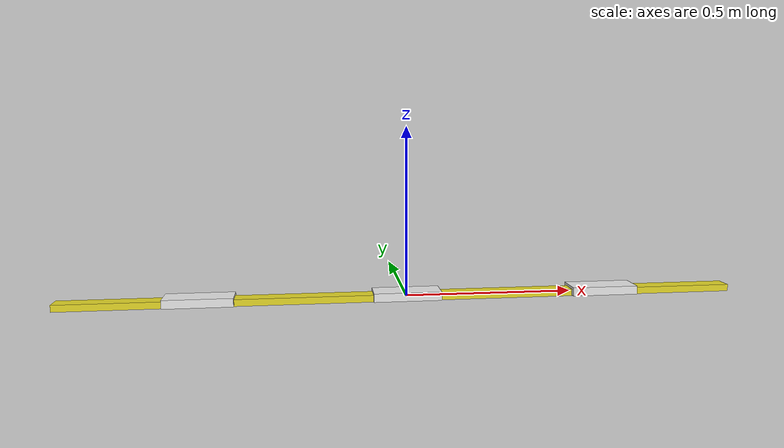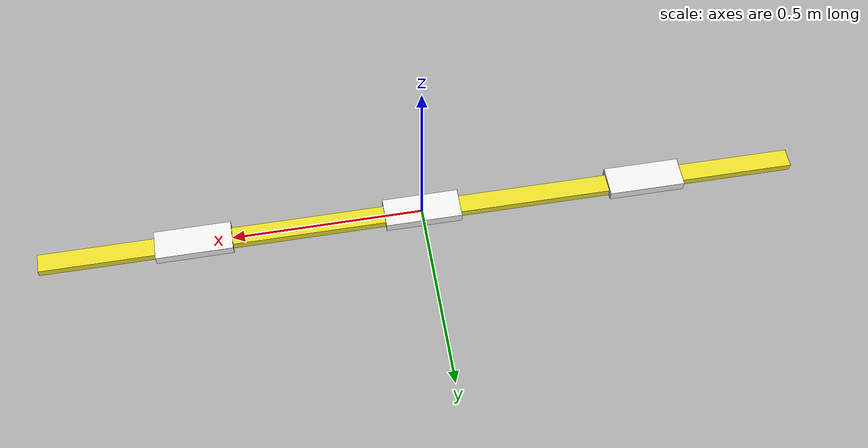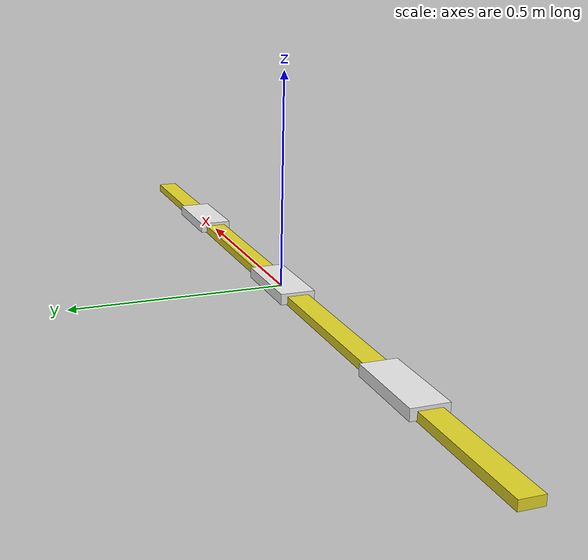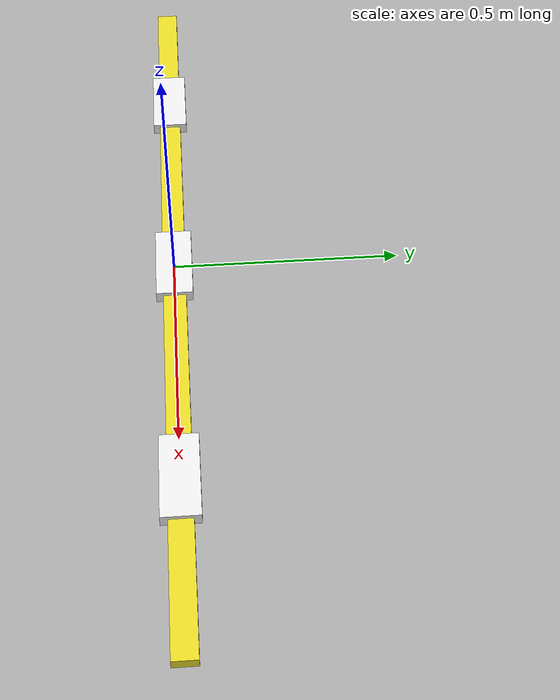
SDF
<?xml version="1.0" ?>
<sdf version='1.7'>
  <model name='path_line'>
    <static>1</static>
    <link name='line_link'>
      <!-- 主线段 -->
      <visual name='main_line'>
        <pose>0 0 0 0 0 0</pose>
        <geometry>
          <box>
            <size>2.0 0.05 0.02</size>
          </box>
        </geometry>
        <material>
          <script>
            <uri>file://media/materials/scripts/gazebo.material</uri>
            <name>Gazebo/Yellow</name>
          </script>
        </material>
      </visual>

      <!-- 虚线效果 - 可选 -->
      <visual name='dash_1'>
        <pose>-0.6 0 0.005 0 0 0</pose>
        <geometry>
          <box>
            <size>0.2 0.08 0.025</size>
          </box>
        </geometry>
        <material>
          <script>
            <uri>file://media/materials/scripts/gazebo.material</uri>
            <name>Gazebo/White</name>
          </script>
        </material>
      </visual>

      <visual name='dash_2'>
        <pose>0 0 0.005 0 0 0</pose>
        <geometry>
          <box>
            <size>0.2 0.08 0.025</size>
          </box>
        </geometry>
        <material>
          <script>
            <uri>file://media/materials/scripts/gazebo.material</uri>
            <name>Gazebo/White</name>
          </script>
        </material>
      </visual>

      <visual name='dash_3'>
        <pose>0.6 0 0.005 0 0 0</pose>
        <geometry>
          <box>
            <size>0.2 0.08 0.025</size>
          </box>
        </geometry>
        <material>
          <script>
            <uri>file://media/materials/scripts/gazebo.material</uri>
            <name>Gazebo/White</name>
          </script>
        </material>
      </visual>
    </link>
  </model>
</sdf>
